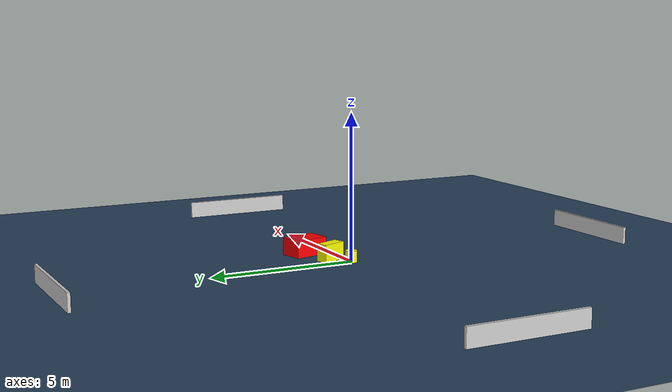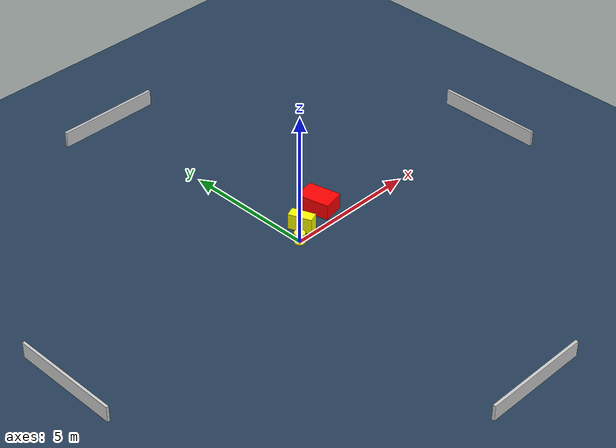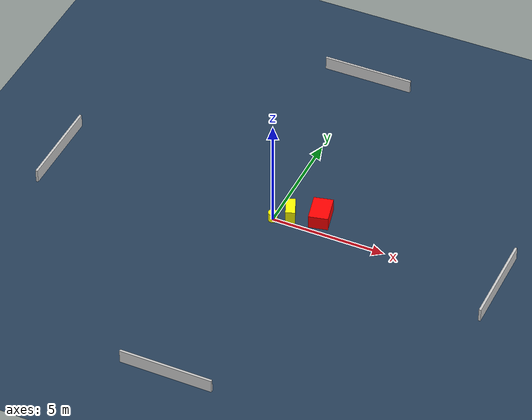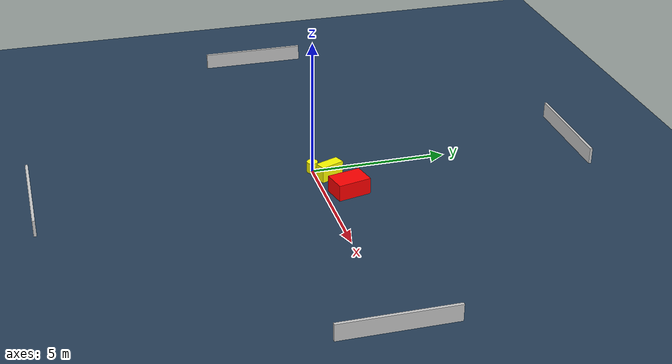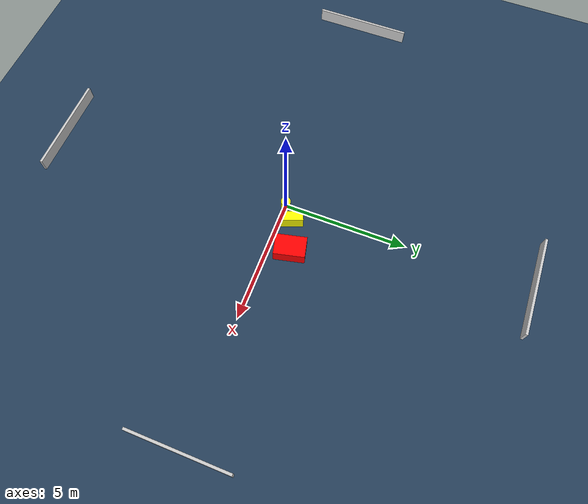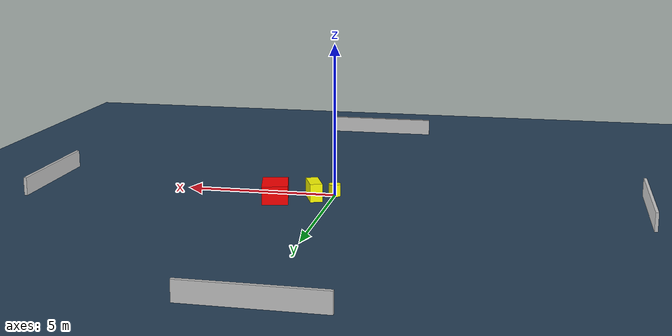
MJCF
<?xml version="1.0" ?>
<mujoco model="generated_environment">
  <option timestep="0.01" integrator="RK4" cone="elliptic"/>
  <default>
    <geom density="1"/>
  </default>
  <asset>
    <texture builtin="gradient" height="3072" name="skybox" rgb1="0.3 0.5 0.7" rgb2="0 0 0" type="skybox" width="512"/>
    <texture builtin="checker" height="300" name="groundplane" rgb1="0.2 0.3 0.4" rgb2="0.1 0.2 0.3" type="2d" width="300"/>
    <material name="groundplane" reflectance="0.2" texrepeat="5 5" texture="groundplane"/>
  </asset>
  <worldbody>
    <light dir="0 0 -1" directional="true" pos="0 0 1.5"/>
    <geom condim="3" friction="0.5 0.005 0.001" material="groundplane" name="floor" pos="0 0 0" size="0 0 0.05" type="plane"/>
    <body name="walls">
      <geom name="wall_1" condim="4" pos="-10.0 0.0 0.3" rgba="0.800000011920929 0.800000011920929 0.800000011920929 1.0" size="0.05 2.0 0.3" type="box"/>
      <geom name="wall_2" condim="4" pos="10.0 0.0 0.3" rgba="0.800000011920929 0.800000011920929 0.800000011920929 1.0" size="0.05 2.0 0.3" type="box"/>
      <geom name="wall_3" condim="4" pos="0.0 -10.0 0.3" rgba="0.800000011920929 0.800000011920929 0.800000011920929 1.0" size="2.0 0.05 0.3" type="box"/>
      <geom name="wall_4" condim="4" pos="0.0 10.0 0.3" rgba="0.800000011920929 0.800000011920929 0.800000011920929 1.0" size="2.0 0.05 0.3" type="box"/>
    </body>
    <body name="robot">
      <joint name="joint_x" type="slide" pos="0 0 0" axis="1 0 0"/>
      <joint name="joint_y" type="slide" pos="0 0 0" axis="0 1 0"/>
      <geom name="robot" type="cylinder" pos="0.0 0.0 0.2" size="0.2 0.2 0.0" mass="5.0" friction="1.0 0.005 0.0001" condim="4" rgba="1.0 1.0 0.0 1.0"/>
    </body>
    <body name="obstacle_1_movable">
      <geom name="obstacle_1_movable" condim="4" pos="0.5912872615407977 0.4846098780843961 0.3" euler="0 0 111.995638253519" friction="0.0 0.005 0.001" rgba="1.0 1.0 0.0 1.0" size="0.44275526735391785 0.20097541048818998 0.3" type="box" mass="0.1"/>
      <joint type="free"/>
    </body>
    <body name="obstacle_2_static">
      <geom name="obstacle_2_static" condim="4" pos="1.795930492014555 0.8676205298680743 0.3" euler="0 0 283.0366912658005" friction="0.0 0.005 0.001" rgba="1.0 0.0 0.0 1.0" size="0.6160500658742696 0.4199389802826214 0.3" type="box"/>
    </body>
  </worldbody>
  <actuator>
    <motor name="actuator_x" joint="joint_x" gear="1" ctrlrange="-1 1"/>
    <motor name="actuator_y" joint="joint_y" gear="1" ctrlrange="-1 1"/>
  </actuator>
</mujoco>
